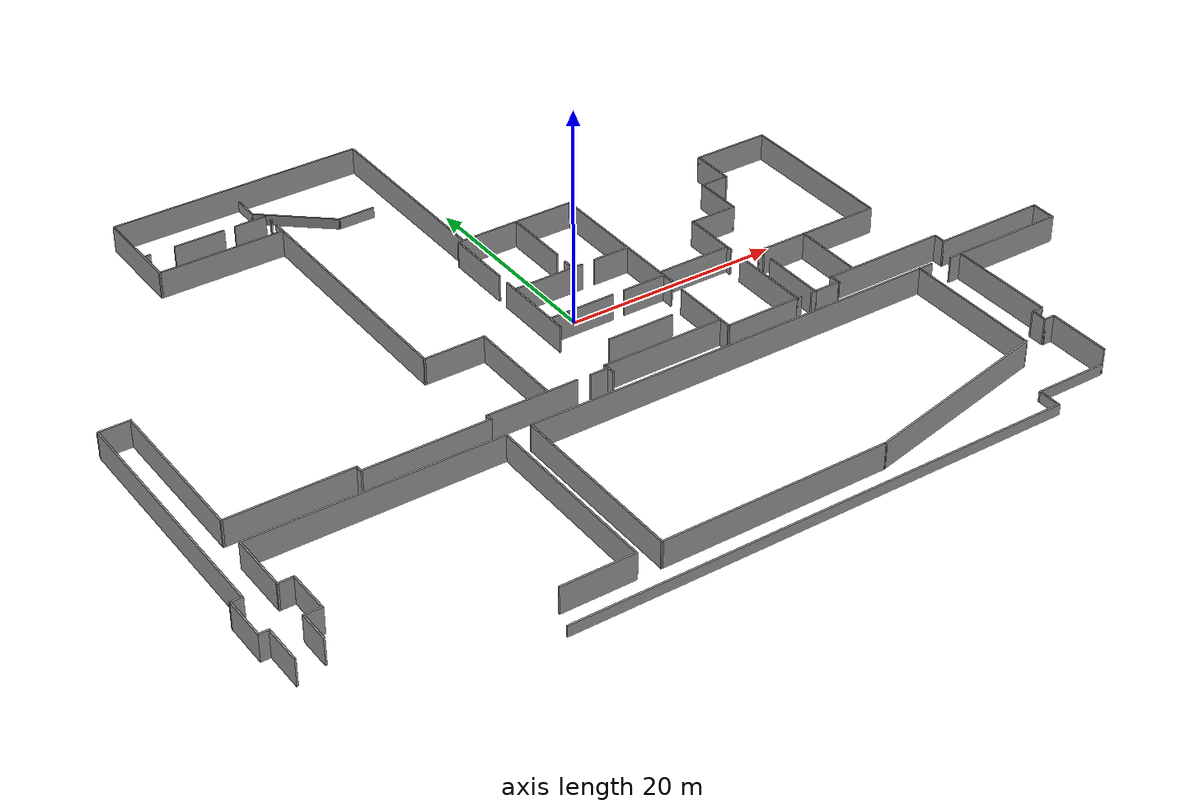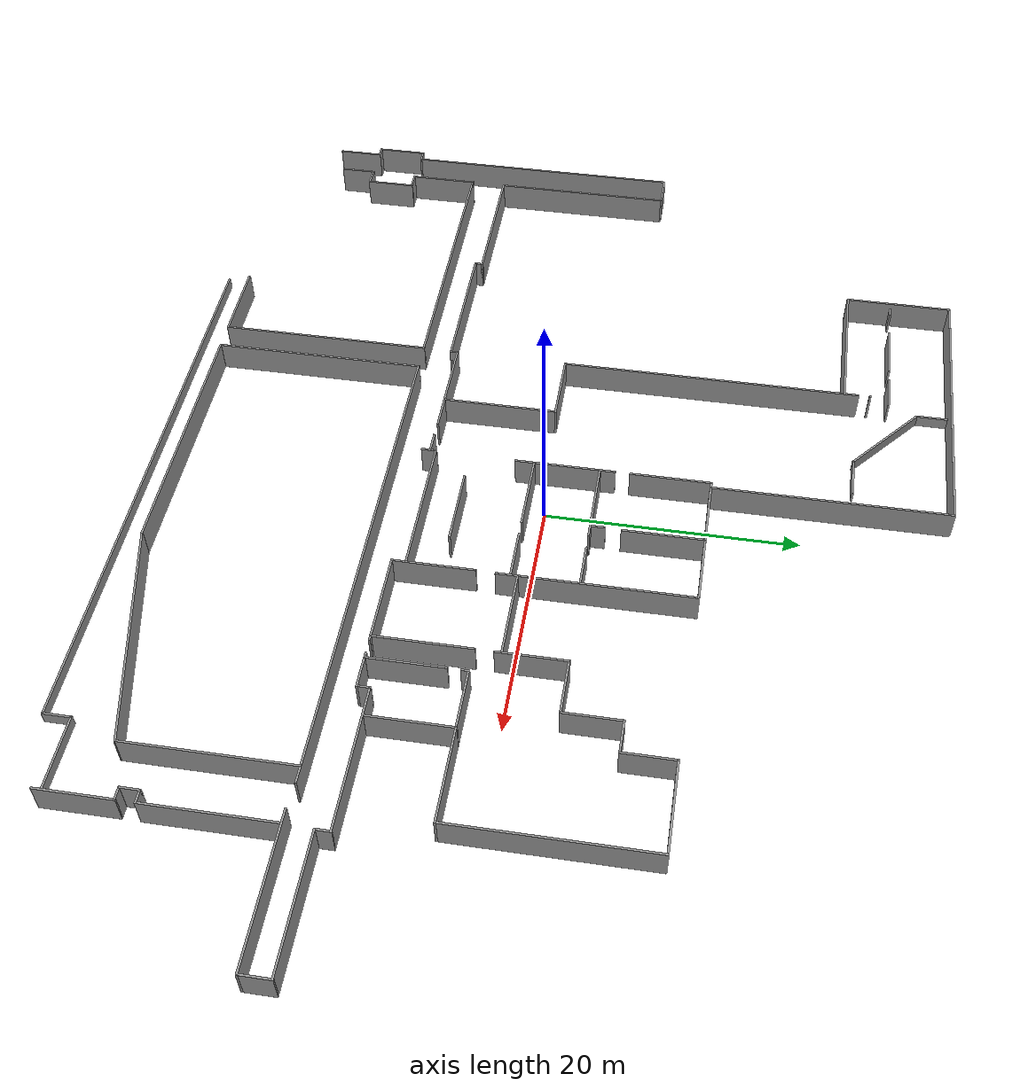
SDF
<sdf version="1.6">
 <model name="uia_section_v2">
  <pose>-0.012751 -0.289001 0 0 -0 0</pose>
  <link name="Wall_0">
   <collision name="Wall_0_Collision">
    <geometry><box><size>24.4683 0.15 2.5</size></box></geometry>
    <pose>0 0 1.25 0 -0 0</pose>
   </collision>
   <visual name="Wall_0_Visual">
    <pose>0 0 1.25 0 -0 0</pose>
    <geometry><box><size>24.4683 0.15 2.5</size></box></geometry>
    <material>
     <script><uri>file://media/materials/scripts/gazebo.material</uri><name>Gazebo/Grey</name></script>
     <ambient>1 1 1 1</ambient>
    </material>
    <meta><layer>0</layer></meta>
   </visual>
   <pose>-14.6533 11.9461 0 0 -0 1.5708</pose>
  </link>
  <link name="Wall_100">
   <collision name="Wall_100_Collision">
    <geometry><box><size>11.5 0.15 2.5</size></box></geometry>
    <pose>0 0 1.25 0 -0 0</pose>
   </collision>
   <visual name="Wall_100_Visual">
    <pose>0 0 1.25 0 -0 0</pose>
    <geometry><box><size>11.5 0.15 2.5</size></box></geometry>
    <material>
     <script><uri>file://media/materials/scripts/gazebo.material</uri><name>Gazebo/Grey</name></script>
     <ambient>1 1 1 1</ambient>
    </material>
    <meta><layer>0</layer></meta>
   </visual>
   <pose>2.32813 -8.98775 0 0 -0 0</pose>
  </link>
  <link name="Wall_102">
   <collision name="Wall_102_Collision">
    <geometry><box><size>1.25 0.15 2.5</size></box></geometry>
    <pose>0 0 1.25 0 -0 0</pose>
   </collision>
   <visual name="Wall_102_Visual">
    <pose>0 0 1.25 0 -0 0</pose>
    <geometry><box><size>1.25 0.15 2.5</size></box></geometry>
    <material>
     <script><uri>file://media/materials/scripts/gazebo.material</uri><name>Gazebo/Grey</name></script>
     <ambient>1 1 1 1</ambient>
    </material>
    <meta><layer>0</layer></meta>
   </visual>
   <pose>-3.34687 -9.53775 0 0 -0 -1.5708</pose>
  </link>
  <link name="Wall_104">
   <collision name="Wall_104_Collision">
    <geometry><box><size>1.75 0.15 2.5</size></box></geometry>
    <pose>0 0 1.25 0 -0 0</pose>
   </collision>
   <visual name="Wall_104_Visual">
    <pose>0 0 1.25 0 -0 0</pose>
    <geometry><box><size>1.75 0.15 2.5</size></box></geometry>
    <material>
     <script><uri>file://media/materials/scripts/gazebo.material</uri><name>Gazebo/Grey</name></script>
     <ambient>1 1 1 1</ambient>
    </material>
    <meta><layer>0</layer></meta>
   </visual>
   <pose>-4.17345 -9.44249 0 0 -0 0</pose>
  </link>
  <link name="Wall_107">
   <collision name="Wall_107_Collision">
    <geometry><box><size>8.5 0.15 2.5</size></box></geometry>
    <pose>0 0 1.25 0 -0 0</pose>
   </collision>
   <visual name="Wall_107_Visual">
    <pose>0 0 1.25 0 -0 0</pose>
    <geometry><box><size>8.5 0.15 2.5</size></box></geometry>
    <material>
     <script><uri>file://media/materials/scripts/gazebo.material</uri><name>Gazebo/Grey</name></script>
     <ambient>1 1 1 1</ambient>
    </material>
    <meta><layer>0</layer></meta>
   </visual>
   <pose>-10.4727 -9.40106 0 0 -0 0</pose>
  </link>
  <link name="Wall_109">
   <collision name="Wall_109_Collision">
    <geometry><box><size>0.7 0.15 2.5</size></box></geometry>
    <pose>0 0 1.25 0 -0 0</pose>
   </collision>
   <visual name="Wall_109_Visual">
    <pose>0 0 1.25 0 -0 0</pose>
    <geometry><box><size>0.7 0.15 2.5</size></box></geometry>
    <material>
     <script><uri>file://media/materials/scripts/gazebo.material</uri><name>Gazebo/Grey</name></script>
     <ambient>1 1 1 1</ambient>
    </material>
    <meta><layer>0</layer></meta>
   </visual>
   <pose>-14.6477 -9.67606 0 0 -0 -1.5708</pose>
  </link>
  <link name="Wall_11">
   <collision name="Wall_11_Collision">
    <geometry><box><size>4.75 0.15 2</size></box></geometry>
    <pose>0 0 1 0 -0 0</pose>
   </collision>
   <visual name="Wall_11_Visual">
    <pose>0 0 1 0 -0 0</pose>
    <geometry><box><size>4.75 0.15 2</size></box></geometry>
    <material>
     <script><uri>file://media/materials/scripts/gazebo.material</uri><name>Gazebo/Grey</name></script>
     <ambient>1 1 1 1</ambient>
    </material>
    <meta><layer>0</layer></meta>
   </visual>
   <pose>-20.7843 26.663 0 0 -0 0</pose>
  </link>
  <link name="Wall_111">
   <collision name="Wall_111_Collision">
    <geometry><box><size>11.6 0.15 2.5</size></box></geometry>
    <pose>0 0 1.25 0 -0 0</pose>
   </collision>
   <visual name="Wall_111_Visual">
    <pose>0 0 1.25 0 -0 0</pose>
    <geometry><box><size>11.6 0.15 2.5</size></box></geometry>
    <material>
     <script><uri>file://media/materials/scripts/gazebo.material</uri><name>Gazebo/Grey</name></script>
     <ambient>1 1 1 1</ambient>
    </material>
    <meta><layer>0</layer></meta>
   </visual>
   <pose>-20.3727 -9.95106 0 0 -0 3.14159</pose>
  </link>
  <link name="Wall_113">
   <collision name="Wall_113_Collision">
    <geometry><box><size>9.25 0.15 2.5</size></box></geometry>
    <pose>0 0 1.25 0 -0 0</pose>
   </collision>
   <visual name="Wall_113_Visual">
    <pose>0 0 1.25 0 -0 0</pose>
    <geometry><box><size>9.25 0.15 2.5</size></box></geometry>
    <material>
     <script><uri>file://media/materials/scripts/gazebo.material</uri><name>Gazebo/Grey</name></script>
     <ambient>1 1 1 1</ambient>
    </material>
    <meta><layer>0</layer></meta>
   </visual>
   <pose>-9.03427 -4.76275 0 0 -0 -1.5708</pose>
  </link>
  <link name="Wall_115">
   <collision name="Wall_115_Collision">
    <geometry><box><size>5.76923 0.15 2.5</size></box></geometry>
    <pose>0 0 1.25 0 -0 0</pose>
   </collision>
   <visual name="Wall_115_Visual">
    <pose>0 0 1.25 0 -0 0</pose>
    <geometry><box><size>5.76923 0.15 2.5</size></box></geometry>
    <material>
     <script><uri>file://media/materials/scripts/gazebo.material</uri><name>Gazebo/Grey</name></script>
     <ambient>1 1 1 1</ambient>
    </material>
    <meta><layer>0</layer></meta>
   </visual>
   <pose>-11.8437 -0.212999 0 0 -0 0</pose>
  </link>
  <link name="Wall_117">
   <collision name="Wall_117_Collision">
    <geometry><box><size>0.75 0.15 2.5</size></box></geometry>
    <pose>0 0 1.25 0 -0 0</pose>
   </collision>
   <visual name="Wall_117_Visual">
    <pose>0 0 1.25 0 -0 0</pose>
    <geometry><box><size>0.75 0.15 2.5</size></box></geometry>
    <material>
     <script><uri>file://media/materials/scripts/gazebo.material</uri><name>Gazebo/Grey</name></script>
     <ambient>1 1 1 1</ambient>
    </material>
    <meta><layer>0</layer></meta>
   </visual>
   <pose>-26.0977 -9.65106 0 0 -0 1.5708</pose>
  </link>
  <link name="Wall_119">
   <collision name="Wall_119_Collision">
    <geometry><box><size>11.5 0.15 2.5</size></box></geometry>
    <pose>0 0 1.25 0 -0 0</pose>
   </collision>
   <visual name="Wall_119_Visual">
    <pose>0 0 1.25 0 -0 0</pose>
    <geometry><box><size>11.5 0.15 2.5</size></box></geometry>
    <material>
     <script><uri>file://media/materials/scripts/gazebo.material</uri><name>Gazebo/Grey</name></script>
     <ambient>1 1 1 1</ambient>
    </material>
    <meta><layer>0</layer></meta>
   </visual>
   <pose>-31.7727 -9.35106 0 0 -0 3.14159</pose>
  </link>
  <link name="Wall_121">
   <collision name="Wall_121_Collision">
    <geometry><box><size>15 0.15 2.5</size></box></geometry>
    <pose>0 0 1.25 0 -0 0</pose>
   </collision>
   <visual name="Wall_121_Visual">
    <pose>0 0 1.25 0 -0 0</pose>
    <geometry><box><size>15 0.15 2.5</size></box></geometry>
    <material>
     <script><uri>file://media/materials/scripts/gazebo.material</uri><name>Gazebo/Grey</name></script>
     <ambient>1 1 1 1</ambient>
    </material>
    <meta><layer>0</layer></meta>
   </visual>
   <pose>-37.4477 -1.92606 0 0 -0 1.5708</pose>
  </link>
  <link name="Wall_123">
   <collision name="Wall_123_Collision">
    <geometry><box><size>2.9 0.15 2.5</size></box></geometry>
    <pose>0 0 1.25 0 -0 0</pose>
   </collision>
   <visual name="Wall_123_Visual">
    <pose>0 0 1.25 0 -0 0</pose>
    <geometry><box><size>2.9 0.15 2.5</size></box></geometry>
    <material>
     <script><uri>file://media/materials/scripts/gazebo.material</uri><name>Gazebo/Grey</name></script>
     <ambient>1 1 1 1</ambient>
    </material>
    <meta><layer>0</layer></meta>
   </visual>
   <pose>-38.8227 5.49894 0 0 -0 3.14159</pose>
  </link>
  <link name="Wall_125">
   <collision name="Wall_125_Collision">
    <geometry><box><size>23.45 0.15 2.5</size></box></geometry>
    <pose>0 0 1.25 0 -0 0</pose>
   </collision>
   <visual name="Wall_125_Visual">
    <pose>0 0 1.25 0 -0 0</pose>
    <geometry><box><size>23.45 0.15 2.5</size></box></geometry>
    <material>
     <script><uri>file://media/materials/scripts/gazebo.material</uri><name>Gazebo/Grey</name></script>
     <ambient>1 1 1 1</ambient>
    </material>
    <meta><layer>0</layer></meta>
   </visual>
   <pose>-40.1977 -6.15106 0 0 -0 -1.5708</pose>
  </link>
  <link name="Wall_127">
   <collision name="Wall_127_Collision">
    <geometry><box><size>1.1 0.15 2.5</size></box></geometry>
    <pose>0 0 1.25 0 -0 0</pose>
   </collision>
   <visual name="Wall_127_Visual">
    <pose>0 0 1.25 0 -0 0</pose>
    <geometry><box><size>1.1 0.15 2.5</size></box></geometry>
    <material>
     <script><uri>file://media/materials/scripts/gazebo.material</uri><name>Gazebo/Grey</name></script>
     <ambient>1 1 1 1</ambient>
    </material>
    <meta><layer>0</layer></meta>
   </visual>
   <pose>-40.6727 -17.8011 0 0 -0 3.14159</pose>
  </link>
  <link name="Wall_129">
   <collision name="Wall_129_Collision">
    <geometry><box><size>4.25 0.15 2.5</size></box></geometry>
    <pose>0 0 1.25 0 -0 0</pose>
   </collision>
   <visual name="Wall_129_Visual">
    <pose>0 0 1.25 0 -0 0</pose>
    <geometry><box><size>4.25 0.15 2.5</size></box></geometry>
    <material>
     <script><uri>file://media/materials/scripts/gazebo.material</uri><name>Gazebo/Grey</name></script>
     <ambient>1 1 1 1</ambient>
    </material>
    <meta><layer>0</layer></meta>
   </visual>
   <pose>-41.1477 -19.8511 0 0 -0 -1.5708</pose>
  </link>
  <link name="Wall_13">
   <collision name="Wall_13_Collision">
    <geometry><box><size>3 0.15 2</size></box></geometry>
    <pose>0 0 1 0 -0 0</pose>
   </collision>
   <visual name="Wall_13_Visual">
    <pose>0 0 1 0 -0 0</pose>
    <geometry><box><size>3 0.15 2</size></box></geometry>
    <material>
     <script><uri>file://media/materials/scripts/gazebo.material</uri><name>Gazebo/Grey</name></script>
     <ambient>1 1 1 1</ambient>
    </material>
    <meta><layer>0</layer></meta>
   </visual>
   <pose>-15.9142 26.663 0 0 -0 0</pose>
  </link>
  <link name="Wall_130">
   <collision name="Wall_130_Collision">
    <geometry><box><size>1 0.15 2.5</size></box></geometry>
    <pose>0 0 1.25 0 -0 0</pose>
   </collision>
   <visual name="Wall_130_Visual">
    <pose>0 0 1.25 0 -0 0</pose>
    <geometry><box><size>1 0.15 2.5</size></box></geometry>
    <material>
     <script><uri>file://media/materials/scripts/gazebo.material</uri><name>Gazebo/Grey</name></script>
     <ambient>1 1 1 1</ambient>
    </material>
    <meta><layer>0</layer></meta>
   </visual>
   <pose>-40.7227 -21.9011 0 0 -0 0</pose>
  </link>
  <link name="Wall_132">
   <collision name="Wall_132_Collision">
    <geometry><box><size>3.75 0.15 2.5</size></box></geometry>
    <pose>0 0 1.25 0 -0 0</pose>
   </collision>
   <visual name="Wall_132_Visual">
    <pose>0 0 1.25 0 -0 0</pose>
    <geometry><box><size>3.75 0.15 2.5</size></box></geometry>
    <material>
     <script><uri>file://media/materials/scripts/gazebo.material</uri><name>Gazebo/Grey</name></script>
     <ambient>1 1 1 1</ambient>
    </material>
    <meta><layer>0</layer></meta>
   </visual>
   <pose>-40.2977 -23.7011 0 0 -0 -1.5708</pose>
  </link>
  <link name="Wall_134">
   <collision name="Wall_134_Collision">
    <geometry><box><size>3 0.15 2.5</size></box></geometry>
    <pose>0 0 1.25 0 -0 0</pose>
   </collision>
   <visual name="Wall_134_Visual">
    <pose>0 0 1.25 0 -0 0</pose>
    <geometry><box><size>3 0.15 2.5</size></box></geometry>
    <material>
     <script><uri>file://media/materials/scripts/gazebo.material</uri><name>Gazebo/Grey</name></script>
     <ambient>1 1 1 1</ambient>
    </material>
    <meta><layer>0</layer></meta>
   </visual>
   <pose>-37.6237 -23.3115 0 0 -0 1.5708</pose>
  </link>
  <link name="Wall_136">
   <collision name="Wall_136_Collision">
    <geometry><box><size>1.65 0.15 2.5</size></box></geometry>
    <pose>0 0 1.25 0 -0 0</pose>
   </collision>
   <visual name="Wall_136_Visual">
    <pose>0 0 1.25 0 -0 0</pose>
    <geometry><box><size>1.65 0.15 2.5</size></box></geometry>
    <material>
     <script><uri>file://media/materials/scripts/gazebo.material</uri><name>Gazebo/Grey</name></script>
     <ambient>1 1 1 1</ambient>
    </material>
    <meta><layer>0</layer></meta>
   </visual>
   <pose>-36.8737 -21.8864 0 0 -0 0</pose>
  </link>
  <link name="Wall_139">
   <collision name="Wall_139_Collision">
    <geometry><box><size>4.15 0.15 2.5</size></box></geometry>
    <pose>0 0 1.25 0 -0 0</pose>
   </collision>
   <visual name="Wall_139_Visual">
    <pose>0 0 1.25 0 -0 0</pose>
    <geometry><box><size>4.15 0.15 2.5</size></box></geometry>
    <material>
     <script><uri>file://media/materials/scripts/gazebo.material</uri><name>Gazebo/Grey</name></script>
     <ambient>1 1 1 1</ambient>
    </material>
    <meta><layer>0</layer></meta>
   </visual>
   <pose>-36.1237 -19.8864 0 0 -0 1.5708</pose>
  </link>
  <link name="Wall_141">
   <collision name="Wall_141_Collision">
    <geometry><box><size>1.51749 0.15 2.5</size></box></geometry>
    <pose>0 0 1.25 0 -0 0</pose>
   </collision>
   <visual name="Wall_141_Visual">
    <pose>0 0 1.25 0 -0 0</pose>
    <geometry><box><size>1.51749 0.15 2.5</size></box></geometry>
    <material>
     <script><uri>file://media/materials/scripts/gazebo.material</uri><name>Gazebo/Grey</name></script>
     <ambient>1 1 1 1</ambient>
    </material>
    <meta><layer>0</layer></meta>
   </visual>
   <pose>-36.8075 -17.8864 0 0 -0 3.14159</pose>
  </link>
  <link name="Wall_143">
   <collision name="Wall_143_Collision">
    <geometry><box><size>5.72545 0.15 2.5</size></box></geometry>
    <pose>0 0 1.25 0 -0 0</pose>
   </collision>
   <visual name="Wall_143_Visual">
    <pose>0 0 1.25 0 -0 0</pose>
    <geometry><box><size>5.72545 0.15 2.5</size></box></geometry>
    <material>
     <script><uri>file://media/materials/scripts/gazebo.material</uri><name>Gazebo/Grey</name></script>
     <ambient>1 1 1 1</ambient>
    </material>
    <meta><layer>0</layer></meta>
   </visual>
   <pose>-37.4912 -15.0987 0 0 -0 1.57081</pose>
  </link>
  <link name="Wall_145">
   <collision name="Wall_145_Collision">
    <geometry><box><size>22.9 0.15 2.5</size></box></geometry>
    <pose>0 0 1.25 0 -0 0</pose>
   </collision>
   <visual name="Wall_145_Visual">
    <pose>0 0 1.25 0 -0 0</pose>
    <geometry><box><size>22.9 0.15 2.5</size></box></geometry>
    <material>
     <script><uri>file://media/materials/scripts/gazebo.material</uri><name>Gazebo/Grey</name></script>
     <ambient>1 1 1 1</ambient>
    </material>
    <meta><layer>0</layer></meta>
   </visual>
   <pose>-26.1162 -12.311 0 0 -0 0</pose>
  </link>
  <link name="Wall_147">
   <collision name="Wall_147_Collision">
    <geometry><box><size>17.225 0.15 2.5</size></box></geometry>
    <pose>0 0 1.25 0 -0 0</pose>
   </collision>
   <visual name="Wall_147_Visual">
    <pose>0 0 1.25 0 -0 0</pose>
    <geometry><box><size>17.225 0.15 2.5</size></box></geometry>
    <material>
     <script><uri>file://media/materials/scripts/gazebo.material</uri><name>Gazebo/Grey</name></script>
     <ambient>1 1 1 1</ambient>
    </material>
    <meta><layer>0</layer></meta>
   </visual>
   <pose>-14.7412 -20.8485 0 0 -0 -1.5708</pose>
  </link>
  <link name="Wall_149">
   <collision name="Wall_149_Collision">
    <geometry><box><size>6.75 0.15 2.5</size></box></geometry>
    <pose>0 0 1.25 0 -0 0</pose>
   </collision>
   <visual name="Wall_149_Visual">
    <pose>0 0 1.25 0 -0 0</pose>
    <geometry><box><size>6.75 0.15 2.5</size></box></geometry>
    <material>
     <script><uri>file://media/materials/scripts/gazebo.material</uri><name>Gazebo/Grey</name></script>
     <ambient>1 1 1 1</ambient>
    </material>
    <meta><layer>0</layer></meta>
   </visual>
   <pose>-18.0413 -29.386 0 0 -0 3.14159</pose>
  </link>
  <link name="Wall_151">
   <collision name="Wall_151_Collision">
    <geometry><box><size>21 0.15 2.5</size></box></geometry>
    <pose>0 0 1.25 0 -0 0</pose>
   </collision>
   <visual name="Wall_151_Visual">
    <pose>0 0 1.25 0 -0 0</pose>
    <geometry><box><size>21 0.15 2.5</size></box></geometry>
    <material>
     <script><uri>file://media/materials/scripts/gazebo.material</uri><name>Gazebo/Grey</name></script>
     <ambient>1 1 1 1</ambient>
    </material>
    <meta><layer>0</layer></meta>
   </visual>
   <pose>-2.07125 -29.386 0 0 -0 0</pose>
  </link>
  <link name="Wall_154">
   <collision name="Wall_154_Collision">
    <geometry><box><size>17.225 0.15 2.5</size></box></geometry>
    <pose>0 0 1.25 0 -0 0</pose>
   </collision>
   <visual name="Wall_154_Visual">
    <pose>0 0 1.25 0 -0 0</pose>
    <geometry><box><size>17.225 0.15 2.5</size></box></geometry>
    <material>
     <script><uri>file://media/materials/scripts/gazebo.material</uri><name>Gazebo/Grey</name></script>
     <ambient>1 1 1 1</ambient>
    </material>
    <meta><layer>0</layer></meta>
   </visual>
   <pose>-12.4962 -20.8485 0 0 -0 1.5708</pose>
  </link>
  <link name="Wall_156">
   <collision name="Wall_156_Collision">
    <geometry><box><size>40.25 0.15 2.5</size></box></geometry>
    <pose>0 0 1.25 0 -0 0</pose>
   </collision>
   <visual name="Wall_156_Visual">
    <pose>0 0 1.25 0 -0 0</pose>
    <geometry><box><size>40.25 0.15 2.5</size></box></geometry>
    <material>
     <script><uri>file://media/materials/scripts/gazebo.material</uri><name>Gazebo/Grey</name></script>
     <ambient>1 1 1 1</ambient>
    </material>
    <meta><layer>0</layer></meta>
   </visual>
   <pose>7.55375 -12.311 0 0 -0 0</pose>
  </link>
  <link name="Wall_158">
   <collision name="Wall_158_Collision">
    <geometry><box><size>13.1 0.15 2.5</size></box></geometry>
    <pose>0 0 1.25 0 -0 0</pose>
   </collision>
   <visual name="Wall_158_Visual">
    <pose>0 0 1.25 0 -0 0</pose>
    <geometry><box><size>13.1 0.15 2.5</size></box></geometry>
    <material>
     <script><uri>file://media/materials/scripts/gazebo.material</uri><name>Gazebo/Grey</name></script>
     <ambient>1 1 1 1</ambient>
    </material>
    <meta><layer>0</layer></meta>
   </visual>
   <pose>26.3257 -18.854 0 0 -0 1.5708</pose>
  </link>
  <link name="Wall_16">
   <collision name="Wall_16_Collision">
    <geometry><box><size>2.75 0.15 1</size></box></geometry>
    <pose>0 0 0.5 0 -0 0</pose>
   </collision>
   <visual name="Wall_16_Visual">
    <pose>0 0 0.5 0 -0 0</pose>
    <geometry><box><size>2.75 0.15 1</size></box></geometry>
    <material>
     <script><uri>file://media/materials/scripts/gazebo.material</uri><name>Gazebo/Grey</name></script>
     <ambient>1 1 1 1</ambient>
    </material>
    <meta><layer>0</layer></meta>
   </visual>
   <pose>-14.4512 30.415 0 0 -0 -1.5708</pose>
  </link>
  <link name="Wall_160">
   <collision name="Wall_160_Collision">
    <geometry><box><size>18.5742 0.15 2.5</size></box></geometry>
    <pose>0 0 1.25 0 -0 0</pose>
   </collision>
   <visual name="Wall_160_Visual">
    <pose>0 0 1.25 0 -0 0</pose>
    <geometry><box><size>18.5742 0.15 2.5</size></box></geometry>
    <material>
     <script><uri>file://media/materials/scripts/gazebo.material</uri><name>Gazebo/Grey</name></script>
     <ambient>1 1 1 1</ambient>
    </material>
    <meta><layer>0</layer></meta>
   </visual>
   <pose>17.3397 -27.3575 0 0 -0 0.222019</pose>
  </link>
  <link name="Wall_162">
   <collision name="Wall_162_Collision">
    <geometry><box><size>10 0.15 2.5</size></box></geometry>
    <pose>0 0 1.25 0 -0 0</pose>
   </collision>
   <visual name="Wall_162_Visual">
    <pose>0 0 1.25 0 -0 0</pose>
    <geometry><box><size>10 0.15 2.5</size></box></geometry>
    <material>
     <script><uri>file://media/materials/scripts/gazebo.material</uri><name>Gazebo/Grey</name></script>
     <ambient>1 1 1 1</ambient>
    </material>
    <meta><layer>0</layer></meta>
   </visual>
   <pose>30.6958 -17.49 0 0 -0 1.5708</pose>
  </link>
  <link name="Wall_164">
   <collision name="Wall_164_Collision">
    <geometry><box><size>1.1 0.15 2.5</size></box></geometry>
    <pose>0 0 1.25 0 -0 0</pose>
   </collision>
   <visual name="Wall_164_Visual">
    <pose>0 0 1.25 0 -0 0</pose>
    <geometry><box><size>1.1 0.15 2.5</size></box></geometry>
    <material>
     <script><uri>file://media/materials/scripts/gazebo.material</uri><name>Gazebo/Grey</name></script>
     <ambient>1 1 1 1</ambient>
    </material>
    <meta><layer>0</layer></meta>
   </visual>
   <pose>30.2208 -22.415 0 0 -0 3.14159</pose>
  </link>
  <link name="Wall_166">
   <collision name="Wall_166_Collision">
    <geometry><box><size>1.6 0.15 2.5</size></box></geometry>
    <pose>0 0 1.25 0 -0 0</pose>
   </collision>
   <visual name="Wall_166_Visual">
    <pose>0 0 1.25 0 -0 0</pose>
    <geometry><box><size>1.6 0.15 2.5</size></box></geometry>
    <material>
     <script><uri>file://media/materials/scripts/gazebo.material</uri><name>Gazebo/Grey</name></script>
     <ambient>1 1 1 1</ambient>
    </material>
    <meta><layer>0</layer></meta>
   </visual>
   <pose>29.7458 -23.14 0 0 -0 -1.5708</pose>
  </link>
  <link name="Wall_168">
   <collision name="Wall_168_Collision">
    <geometry><box><size>1.1 0.15 2.5</size></box></geometry>
    <pose>0 0 1.25 0 -0 0</pose>
   </collision>
   <visual name="Wall_168_Visual">
    <pose>0 0 1.25 0 -0 0</pose>
    <geometry><box><size>1.1 0.15 2.5</size></box></geometry>
    <material>
     <script><uri>file://media/materials/scripts/gazebo.material</uri><name>Gazebo/Grey</name></script>
     <ambient>1 1 1 1</ambient>
    </material>
    <meta><layer>0</layer></meta>
   </visual>
   <pose>30.2208 -23.865 0 0 -0 0</pose>
  </link>
  <link name="Wall_170">
   <collision name="Wall_170_Collision">
    <geometry><box><size>5.9 0.15 2.5</size></box></geometry>
    <pose>0 0 1.25 0 -0 0</pose>
   </collision>
   <visual name="Wall_170_Visual">
    <pose>0 0 1.25 0 -0 0</pose>
    <geometry><box><size>5.9 0.15 2.5</size></box></geometry>
    <material>
     <script><uri>file://media/materials/scripts/gazebo.material</uri><name>Gazebo/Grey</name></script>
     <ambient>1 1 1 1</ambient>
    </material>
    <meta><layer>0</layer></meta>
   </visual>
   <pose>30.6958 -26.74 0 0 -0 -1.5708</pose>
  </link>
  <link name="Wall_172">
   <collision name="Wall_172_Collision">
    <geometry><box><size>6.75 0.15 1</size></box></geometry>
    <pose>0 0 0.5 0 -0 0</pose>
   </collision>
   <visual name="Wall_172_Visual">
    <pose>0 0 0.5 0 -0 0</pose>
    <geometry><box><size>6.75 0.15 1</size></box></geometry>
    <material>
     <script><uri>file://media/materials/scripts/gazebo.material</uri><name>Gazebo/Grey</name></script>
     <ambient>1 1 1 1</ambient>
    </material>
    <meta><layer>0</layer></meta>
   </visual>
   <pose>27.3957 -29.615 0 0 -0 3.14159</pose>
  </link>
  <link name="Wall_174">
   <collision name="Wall_174_Collision">
    <geometry><box><size>2.25 0.15 1</size></box></geometry>
    <pose>0 0 0.5 0 -0 0</pose>
   </collision>
   <visual name="Wall_174_Visual">
    <pose>0 0 0.5 0 -0 0</pose>
    <geometry><box><size>2.25 0.15 1</size></box></geometry>
    <material>
     <script><uri>file://media/materials/scripts/gazebo.material</uri><name>Gazebo/Grey</name></script>
     <ambient>1 1 1 1</ambient>
    </material>
    <meta><layer>0</layer></meta>
   </visual>
   <pose>24.0958 -30.665 0 0 -0 -1.5708</pose>
  </link>
  <link name="Wall_176">
   <collision name="Wall_176_Collision">
    <geometry><box><size>46.5 0.15 1</size></box></geometry>
    <pose>0 0 0.5 0 -0 0</pose>
   </collision>
   <visual name="Wall_176_Visual">
    <pose>0 0 0.5 0 -0 0</pose>
    <geometry><box><size>46.5 0.15 1</size></box></geometry>
    <material>
     <script><uri>file://media/materials/scripts/gazebo.material</uri><name>Gazebo/Grey</name></script>
     <ambient>1 1 1 1</ambient>
    </material>
    <meta><layer>0</layer></meta>
   </visual>
   <pose>0.920751 -31.715 0 0 -0 3.14159</pose>
  </link>
  <link name="Wall_178">
   <collision name="Wall_178_Collision">
    <geometry><box><size>0.16 0.15 2.5</size></box></geometry>
    <pose>0 0 1.25 0 -0 0</pose>
   </collision>
   <visual name="Wall_178_Visual">
    <pose>0 0 1.25 0 -0 0</pose>
    <geometry><box><size>0.16 0.15 2.5</size></box></geometry>
    <material>
     <script><uri>file://media/materials/scripts/gazebo.material</uri><name>Gazebo/Grey</name></script>
     <ambient>1 1 1 1</ambient>
    </material>
    <meta><layer>0</layer></meta>
   </visual>
   <pose>-14.6556 25.0773 0 0 -0 1.5708</pose>
  </link>
  <link name="Wall_18">
   <collision name="Wall_18_Collision">
    <geometry><box><size>3.5 0.15 1</size></box></geometry>
    <pose>0 0 0.5 0 -0 0</pose>
   </collision>
   <visual name="Wall_18_Visual">
    <pose>0 0 0.5 0 -0 0</pose>
    <geometry><box><size>3.5 0.15 1</size></box></geometry>
    <material>
     <script><uri>file://media/materials/scripts/gazebo.material</uri><name>Gazebo/Grey</name></script>
     <ambient>1 1 1 1</ambient>
    </material>
    <meta><layer>0</layer></meta>
   </visual>
   <pose>-6.92425 24.081 0 0 -0 0</pose>
  </link>
  <link name="Wall_20">
   <collision name="Wall_20_Collision">
    <geometry><box><size>7.86947 0.15 1</size></box></geometry>
    <pose>0 0 0.5 0 -0 0</pose>
   </collision>
   <visual name="Wall_20_Visual">
    <pose>0 0 0.5 0 -0 0</pose>
    <geometry><box><size>7.86947 0.15 1</size></box></geometry>
    <material>
     <script><uri>file://media/materials/scripts/gazebo.material</uri><name>Gazebo/Grey</name></script>
     <ambient>1 1 1 1</ambient>
    </material>
    <meta><layer>0</layer></meta>
   </visual>
   <pose>-11.5252 26.598 0 0 -0 -0.710397</pose>
  </link>
  <link name="Wall_22">
   <collision name="Wall_22_Collision">
    <geometry><box><size>18.85 0.15 2.5</size></box></geometry>
    <pose>0 0 1.25 0 -0 0</pose>
   </collision>
   <visual name="Wall_22_Visual">
    <pose>0 0 1.25 0 -0 0</pose>
    <geometry><box><size>18.85 0.15 2.5</size></box></geometry>
    <material>
     <script><uri>file://media/materials/scripts/gazebo.material</uri><name>Gazebo/Grey</name></script>
     <ambient>1 1 1 1</ambient>
    </material>
    <meta><layer>0</layer></meta>
   </visual>
   <pose>-2.75825 22.337 0 0 -0 -1.5708</pose>
  </link>
  <link name="Wall_24">
   <collision name="Wall_24_Collision">
    <geometry><box><size>11.5 0.15 2.5</size></box></geometry>
    <pose>0 0 1.25 0 -0 0</pose>
   </collision>
   <visual name="Wall_24_Visual">
    <pose>0 0 1.25 0 -0 0</pose>
    <geometry><box><size>11.5 0.15 2.5</size></box></geometry>
    <material>
     <script><uri>file://media/materials/scripts/gazebo.material</uri><name>Gazebo/Grey</name></script>
     <ambient>1 1 1 1</ambient>
    </material>
    <meta><layer>0</layer></meta>
   </visual>
   <pose>2.44163 12.9662 0 0 -0 0</pose>
  </link>
  <link name="Wall_26">
   <collision name="Wall_26_Collision">
    <geometry><box><size>6.5 0.15 2.5</size></box></geometry>
    <pose>0 0 1.25 0 -0 0</pose>
   </collision>
   <visual name="Wall_26_Visual">
    <pose>0 0 1.25 0 -0 0</pose>
    <geometry><box><size>6.5 0.15 2.5</size></box></geometry>
    <material>
     <script><uri>file://media/materials/scripts/gazebo.material</uri><name>Gazebo/Grey</name></script>
     <ambient>1 1 1 1</ambient>
    </material>
    <meta><layer>0</layer></meta>
   </visual>
   <pose>-3.23337 9.79124 0 0 -0 -1.5708</pose>
  </link>
  <link name="Wall_28">
   <collision name="Wall_28_Collision">
    <geometry><box><size>6.5 0.15 2.5</size></box></geometry>
    <pose>0 0 1.25 0 -0 0</pose>
   </collision>
   <visual name="Wall_28_Visual">
    <pose>0 0 1.25 0 -0 0</pose>
    <geometry><box><size>6.5 0.15 2.5</size></box></geometry>
    <material>
     <script><uri>file://media/materials/scripts/gazebo.material</uri><name>Gazebo/Grey</name></script>
     <ambient>1 1 1 1</ambient>
    </material>
    <meta><layer>0</layer></meta>
   </visual>
   <pose>2.57271 9.80894 0 0 -0 -1.5708</pose>
  </link>
  <link name="Wall_3">
   <collision name="Wall_3_Collision">
    <geometry><box><size>11.8 0.15 2.5</size></box></geometry>
    <pose>0 0 1.25 0 -0 0</pose>
   </collision>
   <visual name="Wall_3_Visual">
    <pose>0 0 1.25 0 -0 0</pose>
    <geometry><box><size>11.8 0.15 2.5</size></box></geometry>
    <material>
     <script><uri>file://media/materials/scripts/gazebo.material</uri><name>Gazebo/Grey</name></script>
     <ambient>1 1 1 1</ambient>
    </material>
    <meta><layer>0</layer></meta>
   </visual>
   <pose>-20.4835 22.9874 0 0 -0 3.14159</pose>
  </link>
  <link name="Wall_31">
   <collision name="Wall_31_Collision">
    <geometry><box><size>15.25 0.15 2.5</size></box></geometry>
    <pose>0 0 1.25 0 -0 0</pose>
   </collision>
   <visual name="Wall_31_Visual">
    <pose>0 0 1.25 0 -0 0</pose>
    <geometry><box><size>15.25 0.15 2.5</size></box></geometry>
    <material>
     <script><uri>file://media/materials/scripts/gazebo.material</uri><name>Gazebo/Grey</name></script>
     <ambient>1 1 1 1</ambient>
    </material>
    <meta><layer>0</layer></meta>
   </visual>
   <pose>8.11663 5.41624 0 0 -0 -1.5708</pose>
  </link>
  <link name="Wall_34">
   <collision name="Wall_34_Collision">
    <geometry><box><size>8 0.15 2.5</size></box></geometry>
    <pose>0 0 1.25 0 -0 0</pose>
   </collision>
   <visual name="Wall_34_Visual">
    <pose>0 0 1.25 0 -0 0</pose>
    <geometry><box><size>8 0.15 2.5</size></box></geometry>
    <material>
     <script><uri>file://media/materials/scripts/gazebo.material</uri><name>Gazebo/Grey</name></script>
     <ambient>1 1 1 1</ambient>
    </material>
    <meta><layer>0</layer></meta>
   </visual>
   <pose>-3.24313 1.41719 0 0 -0 -1.5708</pose>
  </link>
  <link name="Wall_36">
   <collision name="Wall_36_Collision">
    <geometry><box><size>6.8 0.15 2.5</size></box></geometry>
    <pose>0 0 1.25 0 -0 0</pose>
   </collision>
   <visual name="Wall_36_Visual">
    <pose>0 0 1.25 0 -0 0</pose>
    <geometry><box><size>6.8 0.15 2.5</size></box></geometry>
    <material>
     <script><uri>file://media/materials/scripts/gazebo.material</uri><name>Gazebo/Grey</name></script>
     <ambient>1 1 1 1</ambient>
    </material>
    <meta><layer>0</layer></meta>
   </visual>
   <pose>0.112464 4.17976 0 0 -0 0</pose>
  </link>
  <link name="Wall_38">
   <collision name="Wall_38_Collision">
    <geometry><box><size>1.25 0.15 2.5</size></box></geometry>
    <pose>0 0 1.25 0 -0 0</pose>
   </collision>
   <visual name="Wall_38_Visual">
    <pose>0 0 1.25 0 -0 0</pose>
    <geometry><box><size>1.25 0.15 2.5</size></box></geometry>
    <material>
     <script><uri>file://media/materials/scripts/gazebo.material</uri><name>Gazebo/Grey</name></script>
     <ambient>1 1 1 1</ambient>
    </material>
    <meta><layer>0</layer></meta>
   </visual>
   <pose>2.50784 4.72976 0 0 -0 1.5708</pose>
  </link>
  <link name="Wall_40">
   <collision name="Wall_40_Collision">
    <geometry><box><size>3.5 0.15 2.5</size></box></geometry>
    <pose>0 0 1.25 0 -0 0</pose>
   </collision>
   <visual name="Wall_40_Visual">
    <pose>0 0 1.25 0 -0 0</pose>
    <geometry><box><size>3.5 0.15 2.5</size></box></geometry>
    <material>
     <script><uri>file://media/materials/scripts/gazebo.material</uri><name>Gazebo/Grey</name></script>
     <ambient>1 1 1 1</ambient>
    </material>
    <meta><layer>0</layer></meta>
   </visual>
   <pose>6.41592 4.17976 0 0 -0 0</pose>
  </link>
  <link name="Wall_42">
   <collision name="Wall_42_Collision">
    <geometry><box><size>6.25 0.15 2.5</size></box></geometry>
    <pose>0 0 1.25 0 -0 0</pose>
   </collision>
   <visual name="Wall_42_Visual">
    <pose>0 0 1.25 0 -0 0</pose>
    <geometry><box><size>6.25 0.15 2.5</size></box></geometry>
    <material>
     <script><uri>file://media/materials/scripts/gazebo.material</uri><name>Gazebo/Grey</name></script>
     <ambient>1 1 1 1</ambient>
    </material>
    <meta><layer>0</layer></meta>
   </visual>
   <pose>-0.162536 -1.05117 0 0 -0 0</pose>
  </link>
  <link name="Wall_44">
   <collision name="Wall_44_Collision">
    <geometry><box><size>4 0.15 2.5</size></box></geometry>
    <pose>0 0 1.25 0 -0 0</pose>
   </collision>
   <visual name="Wall_44_Visual">
    <pose>0 0 1.25 0 -0 0</pose>
    <geometry><box><size>4 0.15 2.5</size></box></geometry>
    <material>
     <script><uri>file://media/materials/scripts/gazebo.material</uri><name>Gazebo/Grey</name></script>
     <ambient>1 1 1 1</ambient>
    </material>
    <meta><layer>0</layer></meta>
   </visual>
   <pose>6.05412 -1.05117 0 0 -0 0</pose>
  </link>
  <link name="Wall_46">
   <collision name="Wall_46_Collision">
    <geometry><box><size>7 0.15 2.5</size></box></geometry>
    <pose>0 0 1.25 0 -0 0</pose>
   </collision>
   <visual name="Wall_46_Visual">
    <pose>0 0 1.25 0 -0 0</pose>
    <geometry><box><size>7 0.15 2.5</size></box></geometry>
    <material>
     <script><uri>file://media/materials/scripts/gazebo.material</uri><name>Gazebo/Grey</name></script>
     <ambient>1 1 1 1</ambient>
    </material>
    <meta><layer>0</layer></meta>
   </visual>
   <pose>11.592 -0.500543 0 0 -0 0</pose>
  </link>
  <link name="Wall_48">
   <collision name="Wall_48_Collision">
    <geometry><box><size>5.5 0.15 2.5</size></box></geometry>
    <pose>0 0 1.25 0 -0 0</pose>
   </collision>
   <visual name="Wall_48_Visual">
    <pose>0 0 1.25 0 -0 0</pose>
    <geometry><box><size>5.5 0.15 2.5</size></box></geometry>
    <material>
     <script><uri>file://media/materials/scripts/gazebo.material</uri><name>Gazebo/Grey</name></script>
     <ambient>1 1 1 1</ambient>
    </material>
    <meta><layer>0</layer></meta>
   </visual>
   <pose>15.111 1.68501 0 0 -0 1.5708</pose>
  </link>
  <link name="Wall_5">
   <collision name="Wall_5_Collision">
    <geometry><box><size>8.85 0.15 2.5</size></box></geometry>
    <pose>0 0 1.25 0 -0 0</pose>
   </collision>
   <visual name="Wall_5_Visual">
    <pose>0 0 1.25 0 -0 0</pose>
    <geometry><box><size>8.85 0.15 2.5</size></box></geometry>
    <material>
     <script><uri>file://media/materials/scripts/gazebo.material</uri><name>Gazebo/Grey</name></script>
     <ambient>1 1 1 1</ambient>
    </material>
    <meta><layer>0</layer></meta>
   </visual>
   <pose>-26.3085 27.3374 0 0 -0 1.5708</pose>
  </link>
  <link name="Wall_50">
   <collision name="Wall_50_Collision">
    <geometry><box><size>4.5 0.15 2.5</size></box></geometry>
    <pose>0 0 1.25 0 -0 0</pose>
   </collision>
   <visual name="Wall_50_Visual">
    <pose>0 0 1.25 0 -0 0</pose>
    <geometry><box><size>4.5 0.15 2.5</size></box></geometry>
    <material>
     <script><uri>file://media/materials/scripts/gazebo.material</uri><name>Gazebo/Grey</name></script>
     <ambient>1 1 1 1</ambient>
    </material>
    <meta><layer>0</layer></meta>
   </visual>
   <pose>17.286 4.36001 0 0 -0 0</pose>
  </link>
  <link name="Wall_52">
   <collision name="Wall_52_Collision">
    <geometry><box><size>4.6 0.15 2.5</size></box></geometry>
    <pose>0 0 1.25 0 -0 0</pose>
   </collision>
   <visual name="Wall_52_Visual">
    <pose>0 0 1.25 0 -0 0</pose>
    <geometry><box><size>4.6 0.15 2.5</size></box></geometry>
    <material>
     <script><uri>file://media/materials/scripts/gazebo.material</uri><name>Gazebo/Grey</name></script>
     <ambient>1 1 1 1</ambient>
    </material>
    <meta><layer>0</layer></meta>
   </visual>
   <pose>19.461 6.58501 0 0 -0 1.5708</pose>
  </link>
  <link name="Wall_54">
   <collision name="Wall_54_Collision">
    <geometry><box><size>2.7 0.15 2.5</size></box></geometry>
    <pose>0 0 1.25 0 -0 0</pose>
   </collision>
   <visual name="Wall_54_Visual">
    <pose>0 0 1.25 0 -0 0</pose>
    <geometry><box><size>2.7 0.15 2.5</size></box></geometry>
    <material>
     <script><uri>file://media/materials/scripts/gazebo.material</uri><name>Gazebo/Grey</name></script>
     <ambient>1 1 1 1</ambient>
    </material>
    <meta><layer>0</layer></meta>
   </visual>
   <pose>20.736 8.81001 0 0 -0 0</pose>
  </link>
  <link name="Wall_56">
   <collision name="Wall_56_Collision">
    <geometry><box><size>4.15 0.15 2.5</size></box></geometry>
    <pose>0 0 1.25 0 -0 0</pose>
   </collision>
   <visual name="Wall_56_Visual">
    <pose>0 0 1.25 0 -0 0</pose>
    <geometry><box><size>4.15 0.15 2.5</size></box></geometry>
    <material>
     <script><uri>file://media/materials/scripts/gazebo.material</uri><name>Gazebo/Grey</name></script>
     <ambient>1 1 1 1</ambient>
    </material>
    <meta><layer>0</layer></meta>
   </visual>
   <pose>22.011 10.81 0 0 -0 1.5708</pose>
  </link>
  <link name="Wall_58">
   <collision name="Wall_58_Collision">
    <geometry><box><size>7.25 0.15 2.5</size></box></geometry>
    <pose>0 0 1.25 0 -0 0</pose>
   </collision>
   <visual name="Wall_58_Visual">
    <pose>0 0 1.25 0 -0 0</pose>
    <geometry><box><size>7.25 0.15 2.5</size></box></geometry>
    <material>
     <script><uri>file://media/materials/scripts/gazebo.material</uri><name>Gazebo/Grey</name></script>
     <ambient>1 1 1 1</ambient>
    </material>
    <meta><layer>0</layer></meta>
   </visual>
   <pose>25.561 12.81 0 0 -0 0</pose>
  </link>
  <link name="Wall_60">
   <collision name="Wall_60_Collision">
    <geometry><box><size>15.5 0.15 2.5</size></box></geometry>
    <pose>0 0 1.25 0 -0 0</pose>
   </collision>
   <visual name="Wall_60_Visual">
    <pose>0 0 1.25 0 -0 0</pose>
    <geometry><box><size>15.5 0.15 2.5</size></box></geometry>
    <material>
     <script><uri>file://media/materials/scripts/gazebo.material</uri><name>Gazebo/Grey</name></script>
     <ambient>1 1 1 1</ambient>
    </material>
    <meta><layer>0</layer></meta>
   </visual>
   <pose>29.111 5.13501 0 0 -0 -1.5708</pose>
  </link>
  <link name="Wall_62">
   <collision name="Wall_62_Collision">
    <geometry><box><size>12.25 0.15 2.5</size></box></geometry>
    <pose>0 0 1.25 0 -0 0</pose>
   </collision>
   <visual name="Wall_62_Visual">
    <pose>0 0 1.25 0 -0 0</pose>
    <geometry><box><size>12.25 0.15 2.5</size></box></geometry>
    <material>
     <script><uri>file://media/materials/scripts/gazebo.material</uri><name>Gazebo/Grey</name></script>
     <ambient>1 1 1 1</ambient>
    </material>
    <meta><layer>0</layer></meta>
   </visual>
   <pose>23.061 -2.53999 0 0 -0 3.14159</pose>
  </link>
  <link name="Wall_64">
   <collision name="Wall_64_Collision">
    <geometry><box><size>0.65 0.15 2.5</size></box></geometry>
    <pose>0 0 1.25 0 -0 0</pose>
   </collision>
   <visual name="Wall_64_Visual">
    <pose>0 0 1.25 0 -0 0</pose>
    <geometry><box><size>0.65 0.15 2.5</size></box></geometry>
    <material>
     <script><uri>file://media/materials/scripts/gazebo.material</uri><name>Gazebo/Grey</name></script>
     <ambient>1 1 1 1</ambient>
    </material>
    <meta><layer>0</layer></meta>
   </visual>
   <pose>17.011 -2.78999 0 0 -0 -1.5708</pose>
  </link>
  <link name="Wall_66">
   <collision name="Wall_66_Collision">
    <geometry><box><size>6.1 0.15 2.5</size></box></geometry>
    <pose>0 0 1.25 0 -0 0</pose>
   </collision>
   <visual name="Wall_66_Visual">
    <pose>0 0 1.25 0 -0 0</pose>
    <geometry><box><size>6.1 0.15 2.5</size></box></geometry>
    <material>
     <script><uri>file://media/materials/scripts/gazebo.material</uri><name>Gazebo/Grey</name></script>
     <ambient>1 1 1 1</ambient>
    </material>
    <meta><layer>0</layer></meta>
   </visual>
   <pose>16.9978 -7.091 0 0 -0 -1.5708</pose>
  </link>
  <link name="Wall_68">
   <collision name="Wall_68_Collision">
    <geometry><box><size>2.6 0.15 2.5</size></box></geometry>
    <pose>0 0 1.25 0 -0 0</pose>
   </collision>
   <visual name="Wall_68_Visual">
    <pose>0 0 1.25 0 -0 0</pose>
    <geometry><box><size>2.6 0.15 2.5</size></box></geometry>
    <material>
     <script><uri>file://media/materials/scripts/gazebo.material</uri><name>Gazebo/Grey</name></script>
     <ambient>1 1 1 1</ambient>
    </material>
    <meta><layer>0</layer></meta>
   </visual>
   <pose>18.2228 -10.066 0 0 -0 0</pose>
  </link>
  <link name="Wall_7">
   <collision name="Wall_7_Collision">
    <geometry><box><size>23.7 0.15 2.5</size></box></geometry>
    <pose>0 0 1.25 0 -0 0</pose>
   </collision>
   <visual name="Wall_7_Visual">
    <pose>0 0 1.25 0 -0 0</pose>
    <geometry><box><size>23.7 0.15 2.5</size></box></geometry>
    <material>
     <script><uri>file://media/materials/scripts/gazebo.material</uri><name>Gazebo/Grey</name></script>
     <ambient>1 1 1 1</ambient>
    </material>
    <meta><layer>0</layer></meta>
   </visual>
   <pose>-14.5334 31.6872 0 0 -0 -1.6e-05</pose>
  </link>
  <link name="Wall_70">
   <collision name="Wall_70_Collision">
    <geometry><box><size>1.1 0.15 2.5</size></box></geometry>
    <pose>0 0 1.25 0 -0 0</pose>
   </collision>
   <visual name="Wall_70_Visual">
    <pose>0 0 1.25 0 -0 0</pose>
    <geometry><box><size>1.1 0.15 2.5</size></box></geometry>
    <material>
     <script><uri>file://media/materials/scripts/gazebo.material</uri><name>Gazebo/Grey</name></script>
     <ambient>1 1 1 1</ambient>
    </material>
    <meta><layer>0</layer></meta>
   </visual>
   <pose>19.4477 -9.591 0 0 -0 1.5708</pose>
  </link>
  <link name="Wall_72">
   <collision name="Wall_72_Collision">
    <geometry><box><size>11.5 0.15 2.5</size></box></geometry>
    <pose>0 0 1.25 0 -0 0</pose>
   </collision>
   <visual name="Wall_72_Visual">
    <pose>0 0 1.25 0 -0 0</pose>
    <geometry><box><size>11.5 0.15 2.5</size></box></geometry>
    <material>
     <script><uri>file://media/materials/scripts/gazebo.material</uri><name>Gazebo/Grey</name></script>
     <ambient>1 1 1 1</ambient>
    </material>
    <meta><layer>0</layer></meta>
   </visual>
   <pose>25.1228 -9.116 0 0 -0 0</pose>
  </link>
  <link name="Wall_74">
   <collision name="Wall_74_Collision">
    <geometry><box><size>6.7 0.15 2.5</size></box></geometry>
    <pose>0 0 1.25 0 -0 0</pose>
   </collision>
   <visual name="Wall_74_Visual">
    <pose>0 0 1.25 0 -0 0</pose>
    <geometry><box><size>6.7 0.15 2.5</size></box></geometry>
    <material>
     <script><uri>file://media/materials/scripts/gazebo.material</uri><name>Gazebo/Grey</name></script>
     <ambient>1 1 1 1</ambient>
    </material>
    <meta><layer>0</layer></meta>
   </visual>
   <pose>21.7551 -5.8078 0 0 -0 1.5708</pose>
  </link>
  <link name="Wall_76">
   <collision name="Wall_76_Collision">
    <geometry><box><size>1.25 0.15 2.5</size></box></geometry>
    <pose>0 0 1.25 0 -0 0</pose>
   </collision>
   <visual name="Wall_76_Visual">
    <pose>0 0 1.25 0 -0 0</pose>
    <geometry><box><size>1.25 0.15 2.5</size></box></geometry>
    <material>
     <script><uri>file://media/materials/scripts/gazebo.material</uri><name>Gazebo/Grey</name></script>
     <ambient>1 1 1 1</ambient>
    </material>
    <meta><layer>0</layer></meta>
   </visual>
   <pose>30.7978 -9.666 0 0 -0 -1.5708</pose>
  </link>
  <link name="Wall_78">
   <collision name="Wall_78_Collision">
    <geometry><box><size>10.5 0.15 2.5</size></box></geometry>
    <pose>0 0 1.25 0 -0 0</pose>
   </collision>
   <visual name="Wall_78_Visual">
    <pose>0 0 1.25 0 -0 0</pose>
    <geometry><box><size>10.5 0.15 2.5</size></box></geometry>
    <material>
     <script><uri>file://media/materials/scripts/gazebo.material</uri><name>Gazebo/Grey</name></script>
     <ambient>1 1 1 1</ambient>
    </material>
    <meta><layer>0</layer></meta>
   </visual>
   <pose>35.9727 -10.216 0 0 -0 0</pose>
  </link>
  <link name="Wall_80">
   <collision name="Wall_80_Collision">
    <geometry><box><size>2.4 0.15 2.5</size></box></geometry>
    <pose>0 0 1.25 0 -0 0</pose>
   </collision>
   <visual name="Wall_80_Visual">
    <pose>0 0 1.25 0 -0 0</pose>
    <geometry><box><size>2.4 0.15 2.5</size></box></geometry>
    <material>
     <script><uri>file://media/materials/scripts/gazebo.material</uri><name>Gazebo/Grey</name></script>
     <ambient>1 1 1 1</ambient>
    </material>
    <meta><layer>0</layer></meta>
   </visual>
   <pose>41.1477 -11.341 0 0 -0 -1.5708</pose>
  </link>
  <link name="Wall_82">
   <collision name="Wall_82_Collision">
    <geometry><box><size>11.65 0.15 2.5</size></box></geometry>
    <pose>0 0 1.25 0 -0 0</pose>
   </collision>
   <visual name="Wall_82_Visual">
    <pose>0 0 1.25 0 -0 0</pose>
    <geometry><box><size>11.65 0.15 2.5</size></box></geometry>
    <material>
     <script><uri>file://media/materials/scripts/gazebo.material</uri><name>Gazebo/Grey</name></script>
     <ambient>1 1 1 1</ambient>
    </material>
    <meta><layer>0</layer></meta>
   </visual>
   <pose>35.3977 -12.466 0 0 -0 3.14159</pose>
  </link>
  <link name="Wall_85">
   <collision name="Wall_85_Collision">
    <geometry><box><size>0.5 0.15 2.5</size></box></geometry>
    <pose>0 0 1.25 0 -0 0</pose>
   </collision>
   <visual name="Wall_85_Visual">
    <pose>0 0 1.25 0 -0 0</pose>
    <geometry><box><size>0.5 0.15 2.5</size></box></geometry>
    <material>
     <script><uri>file://media/materials/scripts/gazebo.material</uri><name>Gazebo/Grey</name></script>
     <ambient>1 1 1 1</ambient>
    </material>
    <meta><layer>0</layer></meta>
   </visual>
   <pose>16.8227 -10.066 0 0 -0 3.14159</pose>
  </link>
  <link name="Wall_88">
   <collision name="Wall_88_Collision">
    <geometry><box><size>7.732 0.15 2.5</size></box></geometry>
    <pose>0 0 1.25 0 -0 0</pose>
   </collision>
   <visual name="Wall_88_Visual">
    <pose>0 0 1.25 0 -0 0</pose>
    <geometry><box><size>7.732 0.15 2.5</size></box></geometry>
    <material>
     <script><uri>file://media/materials/scripts/gazebo.material</uri><name>Gazebo/Grey</name></script>
     <ambient>1 1 1 1</ambient>
    </material>
    <meta><layer>0</layer></meta>
   </visual>
   <pose>15.0978 -6.275 0 0 -0 -1.5708</pose>
  </link>
  <link name="Wall_9">
   <collision name="Wall_9_Collision">
    <geometry><box><size>1 0.15 2</size></box></geometry>
    <pose>0 0 1 0 -0 0</pose>
   </collision>
   <visual name="Wall_9_Visual">
    <pose>0 0 1 0 -0 0</pose>
    <geometry><box><size>1 0.15 2</size></box></geometry>
    <material>
     <script><uri>file://media/materials/scripts/gazebo.material</uri><name>Gazebo/Grey</name></script>
     <ambient>1 1 1 1</ambient>
    </material>
    <meta><layer>0</layer></meta>
   </visual>
   <pose>-25.8783 26.716 0 0 -0 0</pose>
  </link>
  <link name="Wall_90">
   <collision name="Wall_90_Collision">
    <geometry><box><size>0.5 0.15 2.5</size></box></geometry>
    <pose>0 0 1.25 0 -0 0</pose>
   </collision>
   <visual name="Wall_90_Visual">
    <pose>0 0 1.25 0 -0 0</pose>
    <geometry><box><size>0.5 0.15 2.5</size></box></geometry>
    <material>
     <script><uri>file://media/materials/scripts/gazebo.material</uri><name>Gazebo/Grey</name></script>
     <ambient>1 1 1 1</ambient>
    </material>
    <meta><layer>0</layer></meta>
   </visual>
   <pose>15.2728 -10.066 0 0 -0 0</pose>
  </link>
  <link name="Wall_93">
   <collision name="Wall_93_Collision">
    <geometry><box><size>7.18122 0.15 2.5</size></box></geometry>
    <pose>0 0 1.25 0 -0 0</pose>
   </collision>
   <visual name="Wall_93_Visual">
    <pose>0 0 1.25 0 -0 0</pose>
    <geometry><box><size>7.18122 0.15 2.5</size></box></geometry>
    <material>
     <script><uri>file://media/materials/scripts/gazebo.material</uri><name>Gazebo/Grey</name></script>
     <ambient>1 1 1 1</ambient>
    </material>
    <meta><layer>0</layer></meta>
   </visual>
   <pose>11.5821 -10.0659 0 0 -0 -1.5e-05</pose>
  </link>
  <link name="Wall_96">
   <collision name="Wall_96_Collision">
    <geometry><box><size>6.5 0.15 2.5</size></box></geometry>
    <pose>0 0 1.25 0 -0 0</pose>
   </collision>
   <visual name="Wall_96_Visual">
    <pose>0 0 1.25 0 -0 0</pose>
    <geometry><box><size>6.5 0.15 2.5</size></box></geometry>
    <material>
     <script><uri>file://media/materials/scripts/gazebo.material</uri><name>Gazebo/Grey</name></script>
     <ambient>1 1 1 1</ambient>
    </material>
    <meta><layer>0</layer></meta>
   </visual>
   <pose>8.06654 -6.89089 0 0 -0 1.5708</pose>
  </link>
  <link name="Wall_98">
   <collision name="Wall_98_Collision">
    <geometry><box><size>6.25 0.15 2.5</size></box></geometry>
    <pose>0 0 1.25 0 -0 0</pose>
   </collision>
   <visual name="Wall_98_Visual">
    <pose>0 0 1.25 0 -0 0</pose>
    <geometry><box><size>6.25 0.15 2.5</size></box></geometry>
    <material>
     <script><uri>file://media/materials/scripts/gazebo.material</uri><name>Gazebo/Grey</name></script>
     <ambient>1 1 1 1</ambient>
    </material>
    <meta><layer>0</layer></meta>
   </visual>
   <pose>2.10007 -6.22469 0 0 -0 0</pose>
  </link>
  <static>1</static>
 </model>
</sdf>
